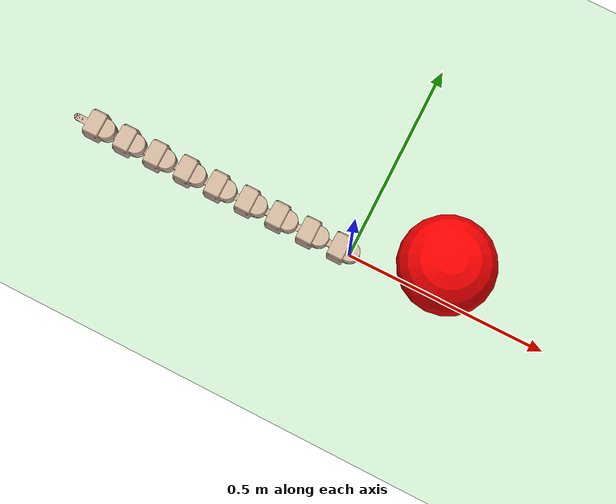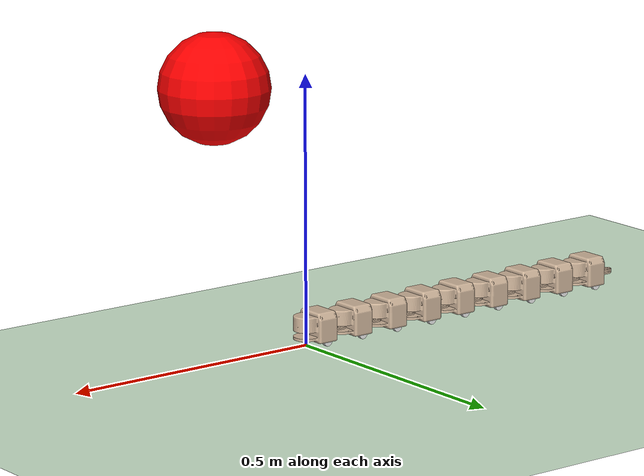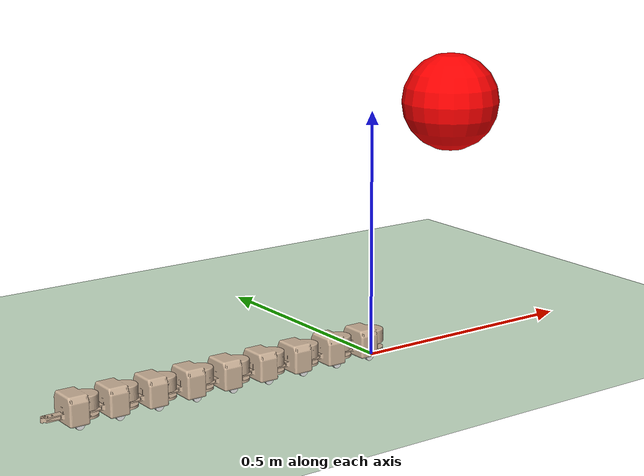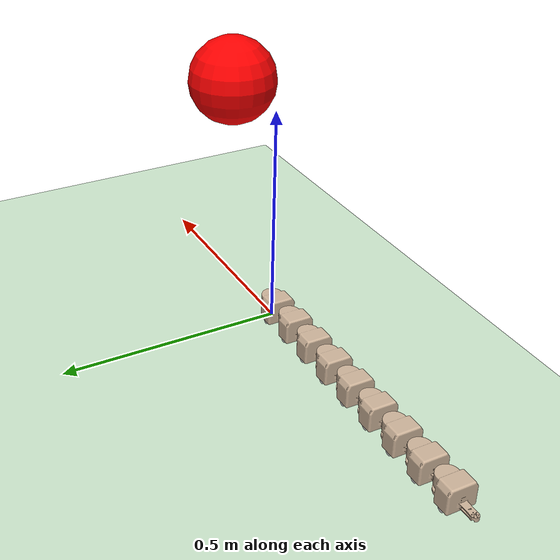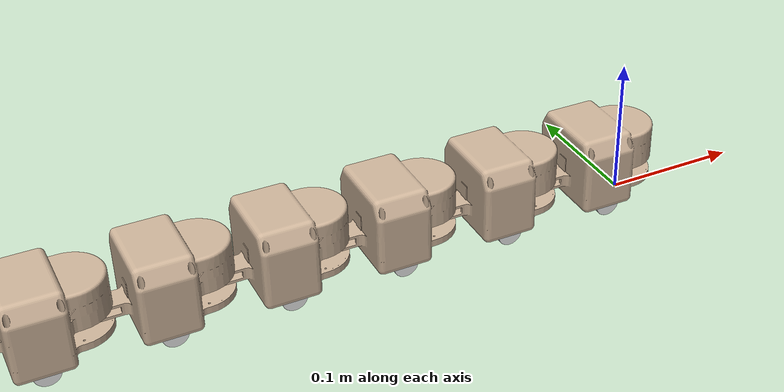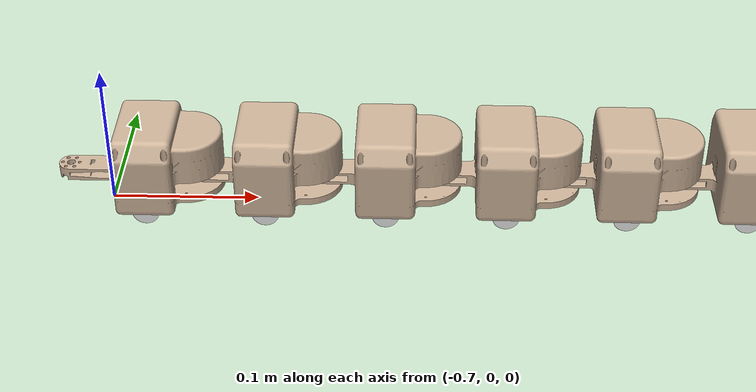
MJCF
<mujoco model="planar_snake_prototype">
    <compiler angle="degree" coordinate="local" inertiafromgeom="true"/>

    <option integrator="Euler" timestep="0.0125">
        <flag energy="enable" clampctrl="enable"/>
    </option>

    <size nconmax="1000" njmax="8000"/>

    <default>

        <geom conaffinity="0" condim="3" friction="1.0 0.005 0.0001" margin="0.0001" density="1144" />
        <joint armature='0.001' damping="0.32" frictionloss="1.3" />
        <default class="wheel">
            <joint axis="0 1 0" type="hinge" damping="0.00012" armature='0.00001' frictionloss="0.0032"/>
            <geom solref="0.03 1" solimp="0.9 0.95 0.0001 " type="cylinder" fromto="0 0 0  0 0.006 0" size="0.009" material="geom" rgba=".9 .9 .9 1" friction="3 0.005 0.001" density="1441" />
        </default>

        <default class="car">
            <joint pos="0 0 0" axis="0 0 1" type="hinge" limited="true" range="-90 90"/>
        </default>

        <position ctrllimited="true" ctrlrange="-1.5 1.5" forcelimited="true" forcerange="-4 4" kp="10" gear="1"/>
    </default>

    <asset>
        <texture builtin="gradient" height="100" rgb1="1 1 1" rgb2="0 0 0" type="skybox" width="100"/>
        <texture builtin="flat" height="1278" mark="cross" markrgb="1 1 1" name="texgeom" random="0.01"
                 rgb1="0.8 0.6 0.4" rgb2="0.8 0.6 0.4" type="cube" width="127"/>
        <texture builtin="checker" height="100" name="texplane" rgb1=".2 .3 .4" rgb2=".1 0.15 0.2"  type="2d" width="100" gridsize="1 1"/>
        <material name="MatPlane" reflectance="0.5" shininess="1" specular="1" texrepeat="80 80" texture="texplane"/>
        <material name="geom" texture="texgeom" texuniform="true"/>
        <material name="MatTarget" rgba="1 0 0 1" reflectance="0.05" shininess="0.1" specular="0.1"/>
        <mesh file="/home/bing/Documents/git_bing/planar_snake_prototype_RL/planar_snake_prototype_RL/envs/assets/module_asm_0107.stl"
              scale="0.001 0.001 0.001"/>
        <material name="matplane" reflectance="0.3" texture="texplane" texrepeat="1 1" texuniform="true"/>
    </asset>

    <visual>
        <map znear="0.0625"  />
        <quality shadowsize="4096"/>

    </visual>

    <worldbody>
        <light cutoff="100" diffuse="1 1 1" dir="-0 0 -1.3" directional="true" exponent="1" pos="0 0 1.3"
               specular=".1 .1 .1"/>
        <geom name="floor" size="20 20 10" material="matplane" conaffinity="1" condim="3" pos="0 0 -0" rgba="0.8 0.9 0.8 1"
              type="plane" friction="1.0 0.005 0.0001"/>

        <!-- the first object is a target ball -->
        <body name="target_ball" pos="0.1 0 0.0">
            <joint axis="1 0 0" name="target_slider_x" type="slide"/>
            <joint axis="0 1 0" name="target_slider_y" type="slide"/>
            <geom name="target_ball_geom" type="sphere" pos="0.1 0 0.5" size="0.1" material="MatTarget"/>
            <camera name="track_ball" mode="trackcom" pos="0 -4 6" euler="30 0 0"/>
            <camera name="track_ball2" mode="targetbodycom" pos="0 0 1" zaxis="0 0 90" />
        </body>

        <!-- the second object is the robot -->
        <body name="car1" pos="0.024 -0.033 0.063">

            <joint axis="1 0 0" name="slider_x" type="slide"/>
            <joint axis="0 1 0" name="slider_y" type="slide"/>
            <joint axis="0 0 1" name="slider_z" type="slide"/>

            <joint pos="0 0 0" axis="1 0 0" name="hinge_x" type="hinge"/>
            <joint pos="0 0 0" axis="0 1 0" name="hinge_y" type="hinge"/>
            <joint pos="0 0 0" axis="0 0 1" name="hinge_z" type="hinge"/>

            <body pos="-0.051 0.0575 -0.054" childclass="wheel"><joint name="joint_wheel_l_00"/><geom/></body>

            <geom name="head" pos="0 0 0" type="mesh" mesh="module_asm_0107" material="geom" euler="270 270 0" rgba="0.8 0.7 .6 1"/>

            <body pos="-0.051 0.0025 -0.054" childclass="wheel"><joint name="joint_wheel_r_00"/><geom/></body>

            <site name='site_head' pos='-0.05 0.015 -0.015' type='box'  size='.01 .01 .01'/>
            <camera name="head" mode="fixed" pos="0 0 0.025" fovy="90" euler="90 -90 0"/>
            <camera name="track_snake1" mode="trackcom" pos="-1.4 -1.25 2.25" euler="30 0 0"/>
            <camera name="track_snake2" mode="trackcom" pos="-1.5 0 3" euler="0 0 0"/>
            <camera name="track_snake3" mode="trackcom" pos="0 -4 6" euler="30 0 0"/>
            <camera name="track_snake31" mode="trackcom" pos="1.25 -3.75 4.5" euler="30 0 0"/>
            <camera name="track_snake32" mode="trackcom" pos="-4.0 0.0 0.75" euler="00 -90 00"/>
            <camera name="track_snake33" mode="trackcom" pos="-4.5 0.0 1.75" xyaxes="0.0 -1 0.0 0.6 0 1 "/>
            <camera name="track_snake4" mode="trackcom" pos="0 0 5" euler="0 0 0"/>

                <body name="car2" pos="-0.08075 0 0.0" childclass="car">
                    <joint name="joint01" pos="-0.024 0.033 -0.030"/>
                    <body pos="-0.051 0.0575 -0.054" childclass="wheel"><joint name="joint_wheel_l_01"/><geom/></body>
                    <geom name="car2_geom" pos="0.0 0.0 0.0" type="mesh" mesh="module_asm_0107" material="geom" euler="270 270 0" rgba="0.8 0.7 .6 1"/>
                    <body pos="-0.051 0.0025 -0.054" childclass="wheel"><joint name="joint_wheel_r_01"/><geom/></body>

                    <body name="car3" pos="-0.08075 0 0.0" childclass="car">
                        <joint name="joint02" pos="-0.024 0.033 -0.030"/>
                        <body pos="-0.051 0.0575 -0.054" childclass="wheel"><joint name="joint_wheel_l_02"/><geom/></body>
                        <geom name="car3_geom" pos="0.0 0.0 0.0" type="mesh" mesh="module_asm_0107" material="geom" euler="270 270 0" rgba="0.8 0.7 .6 1"/>
                        <body pos="-0.051 0.0025 -0.054" childclass="wheel"><joint name="joint_wheel_r_02"/><geom/></body>

                        <body name="car4" pos="-0.08075 0 0.0" childclass="car">
                            <joint name="joint03" pos="-0.024 0.033 -0.030"/>
                            <body pos="-0.051 0.0575 -0.054" childclass="wheel"><joint name="joint_wheel_l_03"/><geom/></body>
                            <geom name="car4_geom" pos="0.0 0.0 0.0" type="mesh" mesh="module_asm_0107" material="geom" euler="270 270 0" rgba="0.8 0.7 .6 1"/>
                            <body pos="-0.051 0.0025 -0.054" childclass="wheel"><joint name="joint_wheel_r_03"/><geom/></body>

                            <body name="car5" pos="-0.08075 0 0.0" childclass="car">
                                <joint name="joint04" pos="-0.024 0.033 -0.030"/>
                                <body pos="-0.051 0.0575 -0.054" childclass="wheel"><joint name="joint_wheel_l_04"/><geom/></body>
                                <geom name="car5_geom" pos="0.0 0.0 0.0" type="mesh" mesh="module_asm_0107" material="geom" euler="270 270 0" rgba="0.8 0.7 .6 1"/>
                                <body pos="-0.051 0.0025 -0.054" childclass="wheel"><joint name="joint_wheel_r_04"/><geom/></body>

                                <body name="car6" pos="-0.08075 0 0.0" childclass="car">
                                    <joint name="joint05" pos="-0.024 0.033 -0.030"/>
                                    <body pos="-0.051 0.0575 -0.054" childclass="wheel"><joint name="joint_wheel_l_05"/><geom/></body>
                                    <geom name="car6_geom" pos="0.0 0.0 0.0" type="mesh" mesh="module_asm_0107" material="geom" euler="270 270 0" rgba="0.8 0.7 .6 1"/>
                                    <body pos="-0.051 0.0025 -0.054" childclass="wheel"><joint name="joint_wheel_r_05"/><geom/></body>

                                    <body name="car7" pos="-0.08075 0 0.0" childclass="car">
                                        <joint name="joint06" pos="-0.024 0.033 -0.030"/>
                                        <body pos="-0.051 0.0575 -0.054" childclass="wheel"><joint name="joint_wheel_l_06"/><geom/></body>
                                        <geom name="car7_geom" pos="0.0 0.0 0.0" type="mesh" mesh="module_asm_0107" material="geom" euler="270 270 0" rgba="0.8 0.7 .6 1"/>
                                        <body pos="-0.051 0.0025 -0.054" childclass="wheel"><joint name="joint_wheel_r_06"/><geom/></body>

                                        <body name="car8" pos="-0.08075 0 0.0" childclass="car">
                                            <joint name="joint07" pos="-0.024 0.033 -0.030"/>
                                            <body pos="-0.051 0.0575 -0.054" childclass="wheel"><joint name="joint_wheel_l_07"/><geom/></body>
                                            <geom name="car8_geom" pos="0.0 0.0 0.0" type="mesh" mesh="module_asm_0107" material="geom" euler="270 270 0" rgba="0.8 0.7 .6 1"/>
                                            <body pos="-0.051 0.0025 -0.054" childclass="wheel"><joint name="joint_wheel_r_07"/><geom/></body>

                                            <body name="car9" pos="-0.08075 0 0.0" childclass="car">
                                                <joint name="joint08" pos="-0.024 0.033 -0.030"/>
                                                <body pos="-0.051 0.0575 -0.054" childclass="wheel"><joint name="joint_wheel_l_08"/><geom/></body>
                                                <geom name="car9_geom" pos="0.0 0.0 0.0" type="mesh" mesh="module_asm_0107" material="geom" euler="270 270 0" rgba="0.8 0.7 .6 1"/>
                                                <body pos="-0.051 0.0025 -0.054" childclass="wheel"><joint name="joint_wheel_r_08"/><geom/></body>
                                            </body>
                                        </body>
                                    </body>
                                </body>
                            </body>
                        </body>
                    </body>
                </body>
        </body>
    </worldbody>

    <actuator >
        <position name="actuator_joint01" joint="joint01"/>
        <position name="actuator_joint02" joint="joint02"/>
        <position name="actuator_joint03" joint="joint03"/>
        <position name="actuator_joint04" joint="joint04"/>
        <position name="actuator_joint05" joint="joint05"/>
        <position name="actuator_joint06" joint="joint06"/>
        <position name="actuator_joint07" joint="joint07"/>
        <position name="actuator_joint08" joint="joint08"/>
    </actuator>

    <sensor>
        <actuatorfrc name="sensor_actuatorfrc_joint01" actuator="actuator_joint01" />
        <actuatorfrc name="sensor_actuatorfrc_joint02" actuator="actuator_joint02" />
        <actuatorfrc name="sensor_actuatorfrc_joint03" actuator="actuator_joint03" />
        <actuatorfrc name="sensor_actuatorfrc_joint04" actuator="actuator_joint04" />
        <actuatorfrc name="sensor_actuatorfrc_joint05" actuator="actuator_joint05" />
        <actuatorfrc name="sensor_actuatorfrc_joint06" actuator="actuator_joint06" />
        <actuatorfrc name="sensor_actuatorfrc_joint07" actuator="actuator_joint07" />
        <actuatorfrc name="sensor_actuatorfrc_joint08" actuator="actuator_joint08" />

        <velocimeter name="sensor_velocimeter" site="site_head"/>
        <accelerometer name="sensor_accelerometer" site="site_head"/>
    </sensor>
</mujoco>
